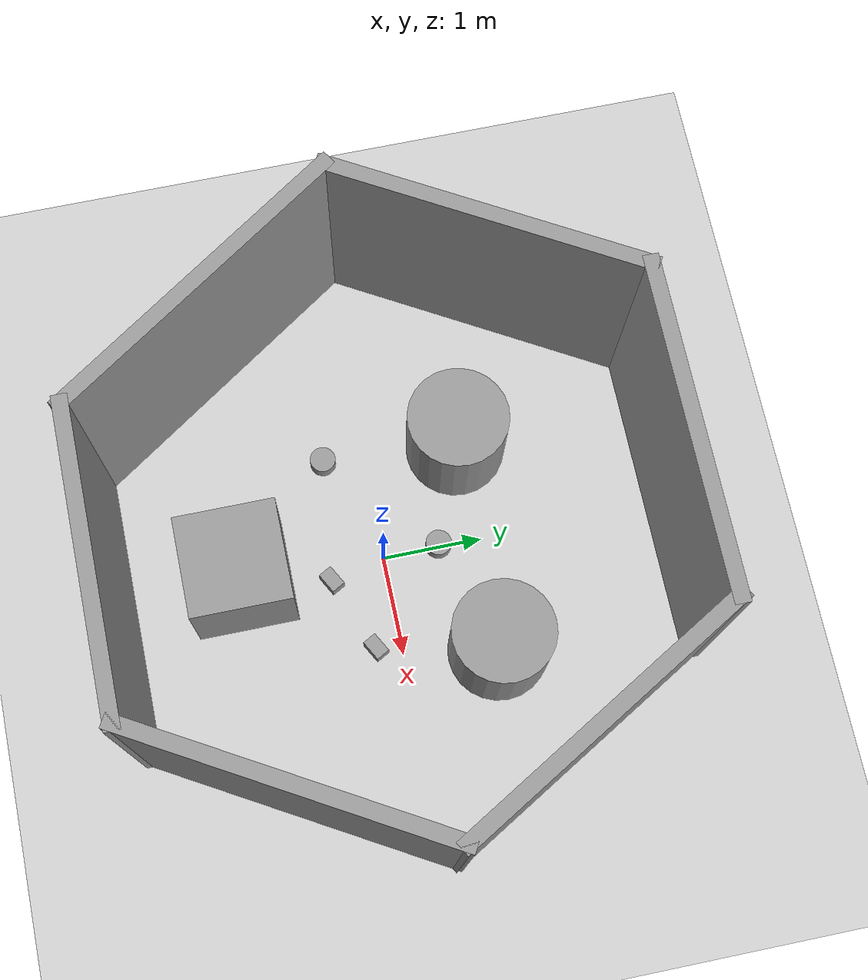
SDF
<sdf version="1.7">
 <world name="default">
  <light name="sun" type="directional">
   <pose>0 0 10 0 -0 0</pose>
   <diffuse>0.8 0.8 0.8 1</diffuse>
   <specular>0.2 0.2 0.2 1</specular>
   <attenuation>
    <range>1000</range>
    <constant>0.9</constant>
    <linear>0.01</linear>
    <quadratic>0.001</quadratic>
   </attenuation>
   <direction>-0.5 0.1 -0.9</direction>
   <spot><inner_angle>0</inner_angle><outer_angle>0</outer_angle><falloff>0</falloff></spot>
  </light>
  <model name="ground_plane">
   <static>1</static>
   <link name="link">
    <collision name="collision">
     <geometry><plane><normal>0 0 1</normal><size>100 100</size></plane></geometry>
     <surface>
      <contact><collide_bitmask>65535</collide_bitmask></contact>
      <friction><ode><mu>100</mu><mu2>50</mu2></ode></friction>
     </surface>
    </collision>
    <visual name="visual">
     <cast_shadows>0</cast_shadows>
     <geometry><plane><normal>0 0 1</normal><size>100 100</size></plane></geometry>
     <material>
      <script><uri>file://media/materials/scripts/gazebo.material</uri><name>Gazebo/Grey</name></script>
     </material>
    </visual>
   </link>
  </model>
  <gravity>0 0 -9.8</gravity>
  <magnetic_field>6e-06 2.3e-05 -4.2e-05</magnetic_field>
  <atmosphere type="adiabatic"/>
  <physics type="ode">
   <max_step_size>0.001</max_step_size>
   <real_time_factor>1</real_time_factor>
   <real_time_update_rate>1000</real_time_update_rate>
  </physics>
  <scene><ambient>0.4 0.4 0.4 1</ambient><background>0.7 0.7 0.7 1</background><shadows>1</shadows></scene>
  <spherical_coordinates>
   <surface_model>EARTH_WGS84</surface_model>
   <latitude_deg>0</latitude_deg>
   <longitude_deg>0</longitude_deg>
   <elevation>0</elevation>
   <heading_deg>0</heading_deg>
  </spherical_coordinates>
  <model name="world1">
   <pose>-0.03173 0.09129 0 0 -0 0</pose>
   <link name="Wall_47">
    <collision name="Wall_47_Collision">
     <geometry><box><size>3.25 0.15 2.5</size></box></geometry>
     <pose>0 0 1.25 0 -0 0</pose>
    </collision>
    <visual name="Wall_47_Visual">
     <pose>0 0 1.25 0 -0 0</pose>
     <geometry><box><size>3.25 0.15 2.5</size></box></geometry>
     <material>
      <script><uri>file://media/materials/scripts/gazebo.material</uri><name>Gazebo/Grey</name></script>
      <ambient>1 1 1 1</ambient>
     </material>
     <meta><layer>0</layer></meta>
    </visual>
    <pose>-2.3242 1.34314 0 0 -0 1.0472</pose>
   </link>
   <link name="Wall_48">
    <collision name="Wall_48_Collision">
     <geometry><box><size>3.25 0.15 2.5</size></box></geometry>
     <pose>0 0 1.25 0 -0 0</pose>
    </collision>
    <visual name="Wall_48_Visual">
     <pose>0 0 1.25 0 -0 0</pose>
     <geometry><box><size>3.25 0.15 2.5</size></box></geometry>
     <material>
      <script><uri>file://media/materials/scripts/gazebo.material</uri><name>Gazebo/Grey</name></script>
      <ambient>1 1 1 1</ambient>
     </material>
     <meta><layer>0</layer></meta>
    </visual>
    <pose>0.000804 2.68548 0 0 -0 0</pose>
   </link>
   <link name="Wall_49">
    <collision name="Wall_49_Collision">
     <geometry><box><size>3.25 0.15 2.5</size></box></geometry>
     <pose>0 0 1.25 0 -0 0</pose>
    </collision>
    <visual name="Wall_49_Visual">
     <pose>0 0 1.25 0 -0 0</pose>
     <geometry><box><size>3.25 0.15 2.5</size></box></geometry>
     <material>
      <script><uri>file://media/materials/scripts/gazebo.material</uri><name>Gazebo/Grey</name></script>
      <ambient>1 1 1 1</ambient>
     </material>
     <meta><layer>0</layer></meta>
    </visual>
    <pose>2.3258 1.34314 0 0 -0 -1.0472</pose>
   </link>
   <link name="Wall_50">
    <collision name="Wall_50_Collision">
     <geometry><box><size>3.25 0.15 2.5</size></box></geometry>
     <pose>0 0 1.25 0 -0 0</pose>
    </collision>
    <visual name="Wall_50_Visual">
     <pose>0 0 1.25 0 -0 0</pose>
     <geometry><box><size>3.25 0.15 2.5</size></box></geometry>
     <material>
      <script><uri>file://media/materials/scripts/gazebo.material</uri><name>Gazebo/Grey</name></script>
      <ambient>1 1 1 1</ambient>
     </material>
     <meta><layer>0</layer></meta>
    </visual>
    <pose>2.3258 -1.34153 0 0 -0 -2.0944</pose>
   </link>
   <link name="Wall_51">
    <collision name="Wall_51_Collision">
     <geometry><box><size>3 0.15 2.5</size></box></geometry>
     <pose>0 0 1.25 0 -0 0</pose>
    </collision>
    <visual name="Wall_51_Visual">
     <pose>0 0 1.25 0 -0 0</pose>
     <geometry><box><size>3 0.15 2.5</size></box></geometry>
     <material>
      <script><uri>file://media/materials/scripts/gazebo.material</uri><name>Gazebo/Grey</name></script>
      <ambient>1 1 1 1</ambient>
     </material>
     <meta><layer>0</layer></meta>
    </visual>
    <pose>0.125804 -2.68387 0 0 -0 3.14159</pose>
   </link>
   <link name="Wall_52">
    <collision name="Wall_52_Collision">
     <geometry><box><size>3.38226 0.15 2.5</size></box></geometry>
     <pose>0 0 1.25 0 -0 0</pose>
    </collision>
    <visual name="Wall_52_Visual">
     <pose>0 0 1.25 0 -0 0</pose>
     <geometry><box><size>3.38226 0.15 2.5</size></box></geometry>
     <material>
      <script><uri>file://media/materials/scripts/gazebo.material</uri><name>Gazebo/Grey</name></script>
      <ambient>1 1 1 1</ambient>
     </material>
     <meta><layer>0</layer></meta>
    </visual>
    <pose>-2.1992 -1.34153 0 0 -0 2.16143</pose>
   </link>
   <static>1</static>
  </model>
  <model name="unit_cylinder">
   <pose>-0.995624 0.944445 0.499996 3e-06 2e-06 0</pose>
   <link name="link">
    <inertial>
     <mass>1</mass>
     <inertia><ixx>0.145833</ixx><ixy>0</ixy><ixz>0</ixz><iyy>0.145833</iyy><iyz>0</iyz><izz>0.125</izz></inertia>
    </inertial>
    <collision name="collision">
     <geometry><cylinder><radius>0.5</radius><length>1</length></cylinder></geometry>
    </collision>
    <visual name="visual">
     <geometry><cylinder><radius>0.5</radius><length>1</length></cylinder></geometry>
     <material>
      <script><name>Gazebo/Grey</name><uri>file://media/materials/scripts/gazebo.material</uri></script>
     </material>
    </visual>
   </link>
  </model>
  <model name="unit_cylinder_0">
   <pose>1.14305 0.920898 0.499993 -3e-06 -2e-06 0</pose>
   <link name="link">
    <inertial>
     <mass>1</mass>
     <inertia><ixx>0.145833</ixx><ixy>0</ixy><ixz>0</ixz><iyy>0.145833</iyy><iyz>0</iyz><izz>0.125</izz></inertia>
    </inertial>
    <collision name="collision">
     <geometry><cylinder><radius>0.5</radius><length>1</length></cylinder></geometry>
    </collision>
    <visual name="visual">
     <geometry><cylinder><radius>0.5</radius><length>1</length></cylinder></geometry>
     <material>
      <script><name>Gazebo/Grey</name><uri>file://media/materials/scripts/gazebo.material</uri></script>
     </material>
    </visual>
   </link>
  </model>
  <model name="unit_box">
   <pose>-0.055687 -1.44186 0.5 0 -0 0</pose>
   <link name="link">
    <inertial>
     <mass>1</mass>
     <inertia>
      <ixx>0.166667</ixx>
      <ixy>0</ixy>
      <ixz>0</ixz>
      <iyy>0.166667</iyy>
      <iyz>0</iyz>
      <izz>0.166667</izz>
     </inertia>
    </inertial>
    <collision name="collision"><geometry><box><size>1 1 1</size></box></geometry></collision>
    <visual name="visual">
     <geometry><box><size>1 1 1</size></box></geometry>
     <material>
      <script><name>Gazebo/Grey</name><uri>file://media/materials/scripts/gazebo.material</uri></script>
     </material>
    </visual>
   </link>
  </model>
  <audio><device>default</device></audio>
  <model name="unit_box_0">
   <pose>0.890553 -0.255932 0.07757 -1e-06 3e-06 -1.07023</pose>
   <link name="link">
    <inertial>
     <mass>1</mass>
     <inertia>
      <ixx>0.166667</ixx>
      <ixy>0</ixy>
      <ixz>0</ixz>
      <iyy>0.166667</iyy>
      <iyz>0</iyz>
      <izz>0.166667</izz>
     </inertia>
    </inertial>
    <collision name="collision">
     <geometry><box><size>0.143744 0.217647 0.155139</size></box></geometry>
    </collision>
    <visual name="visual">
     <geometry><box><size>0.143744 0.217647 0.155139</size></box></geometry>
     <material>
      <script><name>Gazebo/Grey</name><uri>file://media/materials/scripts/gazebo.material</uri></script>
     </material>
    </visual>
   </link>
  </model>
  <model name="unit_cylinder_1">
   <pose>-1.10282 -0.405399 0.075712 -1e-06 1e-06 0</pose>
   <link name="link">
    <inertial>
     <mass>1</mass>
     <inertia><ixx>0.145833</ixx><ixy>0</ixy><ixz>0</ixz><iyy>0.145833</iyy><iyz>0</iyz><izz>0.125</izz></inertia>
    </inertial>
    <collision name="collision">
     <geometry><cylinder><radius>0.128787</radius><length>0.15144</length></cylinder></geometry>
    </collision>
    <visual name="visual">
     <geometry><cylinder><radius>0.128787</radius><length>0.15144</length></cylinder></geometry>
     <material>
      <script><name>Gazebo/Grey</name><uri>file://media/materials/scripts/gazebo.material</uri></script>
     </material>
    </visual>
   </link>
  </model>
  <model name="unit_cylinder_1_clone">
   <pose>-0.018589 0.565682 0.075711 -3e-06 -1e-06 -0</pose>
   <link name="link">
    <inertial>
     <mass>1</mass>
     <inertia><ixx>0.145833</ixx><ixy>0</ixy><ixz>0</ixz><iyy>0.145833</iyy><iyz>0</iyz><izz>0.125</izz></inertia>
    </inertial>
    <collision name="collision">
     <geometry><cylinder><radius>0.128787</radius><length>0.15144</length></cylinder></geometry>
    </collision>
    <visual name="visual">
     <geometry><cylinder><radius>0.128787</radius><length>0.15144</length></cylinder></geometry>
     <material>
      <script><name>Gazebo/Grey</name><uri>file://media/materials/scripts/gazebo.material</uri></script>
     </material>
    </visual>
   </link>
  </model>
  <model name="unit_box_0_clone">
   <pose>0.137333 -0.553114 0.07757 3e-06 1e-06 -1.07024</pose>
   <link name="link">
    <inertial>
     <mass>1</mass>
     <inertia>
      <ixx>0.166667</ixx>
      <ixy>0</ixy>
      <ixz>0</ixz>
      <iyy>0.166667</iyy>
      <iyz>0</iyz>
      <izz>0.166667</izz>
     </inertia>
    </inertial>
    <collision name="collision">
     <geometry><box><size>0.143744 0.217647 0.155139</size></box></geometry>
    </collision>
    <visual name="visual">
     <geometry><box><size>0.143744 0.217647 0.155139</size></box></geometry>
     <material>
      <script><name>Gazebo/Grey</name><uri>file://media/materials/scripts/gazebo.material</uri></script>
     </material>
    </visual>
   </link>
  </model>
 </world>
</sdf>
